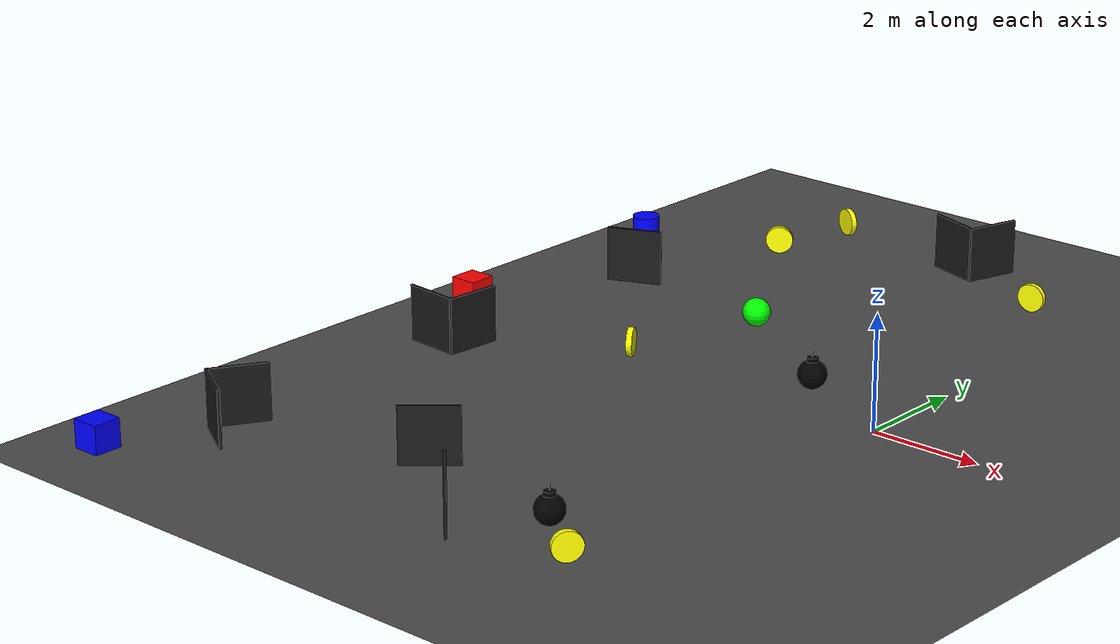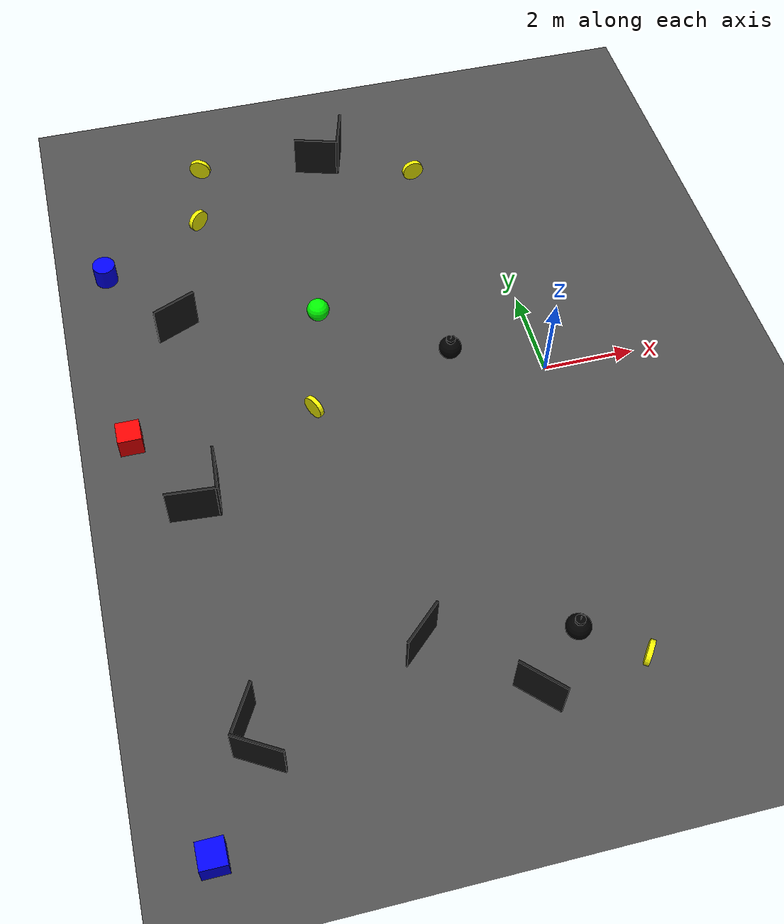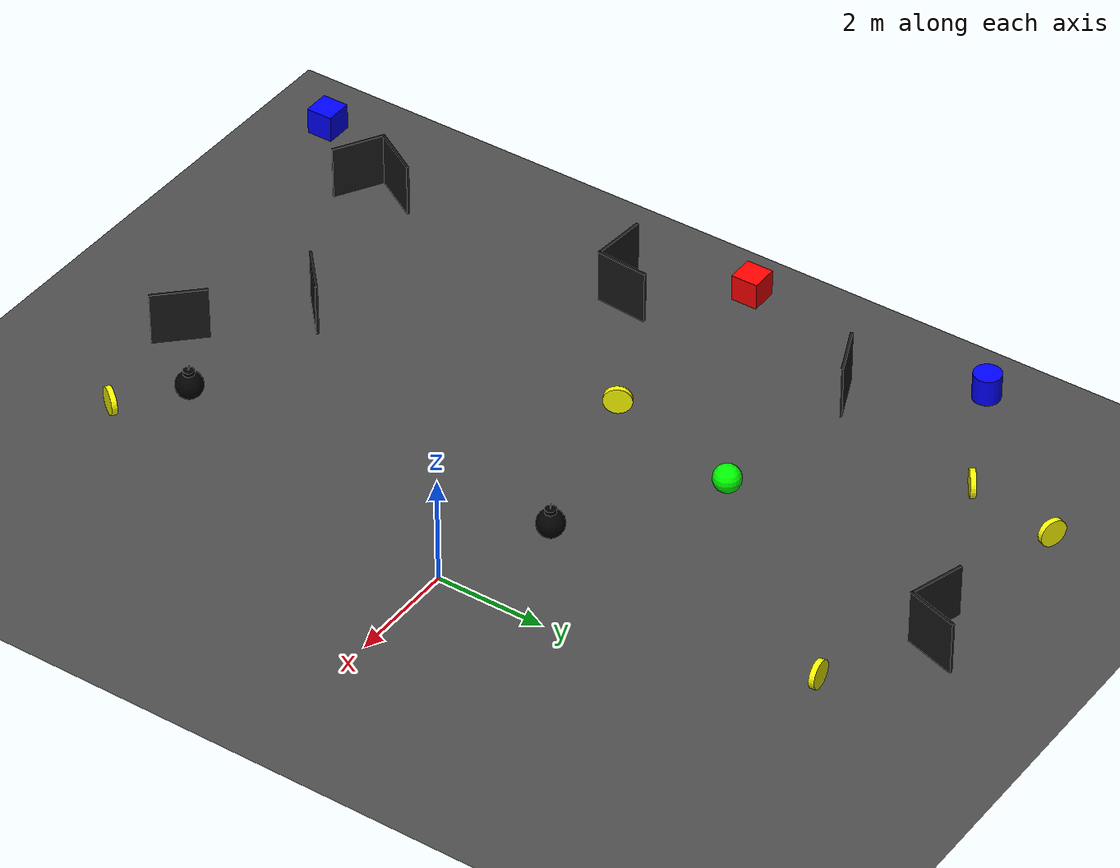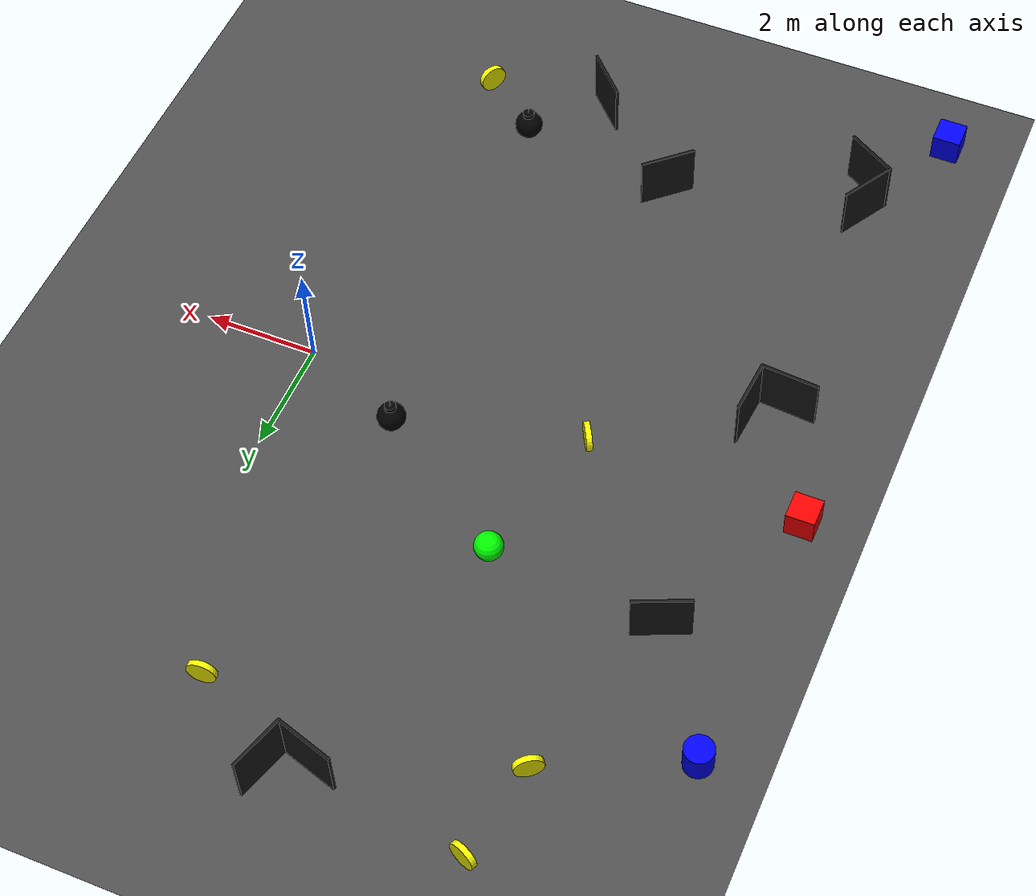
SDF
<sdf version="1.6">
 <world name="default">
  <model name="labrob_ground">
   <static>1</static>
   <link name="link">
    <collision name="collision">
     <geometry><plane><normal>0 0 1</normal><size>20 20</size></plane></geometry>
     <surface><contact><collide_bitmask>2</collide_bitmask></contact></surface>
    </collision>
    <visual name="visual">
     <cast_shadows>0</cast_shadows>
     <geometry><plane><normal>0 0 1</normal><size>20 20</size></plane></geometry>
     <material>
      <script>
       <uri>model://labrob_ground/materials/scripts/</uri>
       <uri>model://labrob_ground/materials/textures/</uri>
       <name>Labrob/AsphaltGround</name>
      </script>
     </material>
    </visual>
   </link>
  </model>
  <model name="coin_3">
   <link name="chassis">
    <pose>0 0 0.26 0 -0 0</pose>
    <collision name="box_collision">
     <geometry><sphere><radius>0.25</radius></sphere></geometry>
     <surface>
      <contact><collide_bitmask>1</collide_bitmask><ode><min_depth>10</min_depth><kp>1</kp></ode></contact>
     </surface>
    </collision>
    <visual name="visual">
     <pose>0 0 0 0 1.57 0</pose>
     <geometry><cylinder><radius>0.25</radius><length>0.1</length></cylinder></geometry>
     <material>
      <ambient>1 1 0 1</ambient>
      <diffuse>1 1 0 1</diffuse>
      <specular>0.1 0.1 0.1 1</specular>
      <emissive>0 0 0 0</emissive>
     </material>
    </visual>
    <sensor name="contact_sensor_1" type="contact">
     <plugin name="my_contact_plugin" filename="libgazebo_ros_bumper.so">
      <bumperTopicName>coin_bumper</bumperTopicName>
      <frameName>world</frameName>
     </plugin>
     <contact><collision>box_collision</collision><topic>__default_topic__</topic></contact>
    </sensor>
    <inertial>
     <inertia><ixx>1</ixx><ixy>0</ixy><ixz>0</ixz><iyy>1</iyy><iyz>0</iyz><izz>1</izz></inertia>
     <mass>1</mass>
    </inertial>
   </link>
   <joint name="coin_hinge" type="revolute">
    <pose>0 0 0.26 0 -0 0</pose>
    <child>chassis</child>
    <parent>world</parent>
    <axis>
     <xyz>0 0 1</xyz>
     <use_parent_model_frame>1</use_parent_model_frame>
     <limit><lower>-1e+16</lower><upper>1e+16</upper></limit>
     <dynamics><spring_reference>0</spring_reference><spring_stiffness>0</spring_stiffness></dynamics>
    </axis>
   </joint>
   <pose>-0.341977 -6.89468 0 0 0 -0.601681</pose>
  </model>
  <model name="coin_4">
   <link name="chassis">
    <pose>0 0 0.26 0 -0 0</pose>
    <collision name="box_collision">
     <geometry><sphere><radius>0.25</radius></sphere></geometry>
     <surface>
      <contact><collide_bitmask>1</collide_bitmask><ode><min_depth>10</min_depth><kp>1</kp></ode></contact>
     </surface>
    </collision>
    <visual name="visual">
     <pose>0 0 0 0 1.57 0</pose>
     <geometry><cylinder><radius>0.25</radius><length>0.1</length></cylinder></geometry>
     <material>
      <ambient>1 1 0 1</ambient>
      <diffuse>1 1 0 1</diffuse>
      <specular>0.1 0.1 0.1 1</specular>
      <emissive>0 0 0 0</emissive>
     </material>
    </visual>
    <sensor name="contact_sensor_1" type="contact">
     <plugin name="my_contact_plugin" filename="libgazebo_ros_bumper.so">
      <bumperTopicName>coin_bumper</bumperTopicName>
      <frameName>world</frameName>
     </plugin>
     <contact><collision>box_collision</collision><topic>__default_topic__</topic></contact>
    </sensor>
    <inertial>
     <inertia><ixx>1</ixx><ixy>0</ixy><ixz>0</ixz><iyy>1</iyy><iyz>0</iyz><izz>1</izz></inertia>
     <mass>1</mass>
    </inertial>
   </link>
   <joint name="coin_hinge" type="revolute">
    <pose>0 0 0.26 0 -0 0</pose>
    <child>chassis</child>
    <parent>world</parent>
    <axis>
     <xyz>0 0 1</xyz>
     <use_parent_model_frame>1</use_parent_model_frame>
     <limit><lower>-1e+16</lower><upper>1e+16</upper></limit>
     <dynamics><spring_reference>0</spring_reference><spring_stiffness>0</spring_stiffness></dynamics>
    </axis>
   </joint>
   <pose>-5.09801 -0.010363 0 0 0 -2.60667</pose>
  </model>
  <model name="coin_5">
   <link name="chassis">
    <pose>0 0 0.26 0 -0 0</pose>
    <collision name="box_collision">
     <geometry><sphere><radius>0.25</radius></sphere></geometry>
     <surface>
      <contact><collide_bitmask>1</collide_bitmask><ode><min_depth>10</min_depth><kp>1</kp></ode></contact>
     </surface>
    </collision>
    <visual name="visual">
     <pose>0 0 0 0 1.57 0</pose>
     <geometry><cylinder><radius>0.25</radius><length>0.1</length></cylinder></geometry>
     <material>
      <ambient>1 1 0 1</ambient>
      <diffuse>1 1 0 1</diffuse>
      <specular>0.1 0.1 0.1 1</specular>
      <emissive>0 0 0 0</emissive>
     </material>
    </visual>
    <sensor name="contact_sensor_1" type="contact">
     <plugin name="my_contact_plugin" filename="libgazebo_ros_bumper.so">
      <bumperTopicName>coin_bumper</bumperTopicName>
      <frameName>world</frameName>
     </plugin>
     <contact><collision>box_collision</collision><topic>__default_topic__</topic></contact>
    </sensor>
    <inertial>
     <inertia><ixx>1</ixx><ixy>0</ixy><ixz>0</ixz><iyy>1</iyy><iyz>0</iyz><izz>1</izz></inertia>
     <mass>1</mass>
    </inertial>
   </link>
   <joint name="coin_hinge" type="revolute">
    <pose>0 0 0.26 0 -0 0</pose>
    <child>chassis</child>
    <parent>world</parent>
    <axis>
     <xyz>0 0 1</xyz>
     <use_parent_model_frame>1</use_parent_model_frame>
     <limit><lower>-1e+16</lower><upper>1e+16</upper></limit>
     <dynamics><spring_reference>0</spring_reference><spring_stiffness>0</spring_stiffness></dynamics>
    </axis>
   </joint>
   <pose>-1.2612 6.3627 0 0 -0 1.66651</pose>
  </model>
  <model name="coin_6">
   <link name="chassis">
    <pose>0 0 0.26 0 -0 0</pose>
    <collision name="box_collision">
     <geometry><sphere><radius>0.25</radius></sphere></geometry>
     <surface>
      <contact><collide_bitmask>1</collide_bitmask><ode><min_depth>10</min_depth><kp>1</kp></ode></contact>
     </surface>
    </collision>
    <visual name="visual">
     <pose>0 0 0 0 1.57 0</pose>
     <geometry><cylinder><radius>0.25</radius><length>0.1</length></cylinder></geometry>
     <material>
      <ambient>1 1 0 1</ambient>
      <diffuse>1 1 0 1</diffuse>
      <specular>0.1 0.1 0.1 1</specular>
      <emissive>0 0 0 0</emissive>
     </material>
    </visual>
    <sensor name="contact_sensor_1" type="contact">
     <plugin name="my_contact_plugin" filename="libgazebo_ros_bumper.so">
      <bumperTopicName>coin_bumper</bumperTopicName>
      <frameName>world</frameName>
     </plugin>
     <contact><collision>box_collision</collision><topic>__default_topic__</topic></contact>
    </sensor>
    <inertial>
     <inertia><ixx>1</ixx><ixy>0</ixy><ixz>0</ixz><iyy>1</iyy><iyz>0</iyz><izz>1</izz></inertia>
     <mass>1</mass>
    </inertial>
   </link>
   <joint name="coin_hinge" type="revolute">
    <pose>0 0 0.26 0 -0 0</pose>
    <child>chassis</child>
    <parent>world</parent>
    <axis>
     <xyz>0 0 1</xyz>
     <use_parent_model_frame>1</use_parent_model_frame>
     <limit><lower>-1e+16</lower><upper>1e+16</upper></limit>
     <dynamics><spring_reference>0</spring_reference><spring_stiffness>0</spring_stiffness></dynamics>
    </axis>
   </joint>
   <pose>-6.57486 5.92197 0 0 -0 2.19378</pose>
  </model>
  <model name="coin_7">
   <link name="chassis">
    <pose>0 0 0.26 0 -0 0</pose>
    <collision name="box_collision">
     <geometry><sphere><radius>0.25</radius></sphere></geometry>
     <surface>
      <contact><collide_bitmask>1</collide_bitmask><ode><min_depth>10</min_depth><kp>1</kp></ode></contact>
     </surface>
    </collision>
    <visual name="visual">
     <pose>0 0 0 0 1.57 0</pose>
     <geometry><cylinder><radius>0.25</radius><length>0.1</length></cylinder></geometry>
     <material>
      <ambient>1 1 0 1</ambient>
      <diffuse>1 1 0 1</diffuse>
      <specular>0.1 0.1 0.1 1</specular>
      <emissive>0 0 0 0</emissive>
     </material>
    </visual>
    <sensor name="contact_sensor_1" type="contact">
     <plugin name="my_contact_plugin" filename="libgazebo_ros_bumper.so">
      <bumperTopicName>coin_bumper</bumperTopicName>
      <frameName>world</frameName>
     </plugin>
     <contact><collision>box_collision</collision><topic>__default_topic__</topic></contact>
    </sensor>
    <inertial>
     <inertia><ixx>1</ixx><ixy>0</ixy><ixz>0</ixz><iyy>1</iyy><iyz>0</iyz><izz>1</izz></inertia>
     <mass>1</mass>
    </inertial>
   </link>
   <joint name="coin_hinge" type="revolute">
    <pose>0 0 0.26 0 -0 0</pose>
    <child>chassis</child>
    <parent>world</parent>
    <axis>
     <xyz>0 0 1</xyz>
     <use_parent_model_frame>1</use_parent_model_frame>
     <limit><lower>-1e+16</lower><upper>1e+16</upper></limit>
     <dynamics><spring_reference>0</spring_reference><spring_stiffness>0</spring_stiffness></dynamics>
    </axis>
   </joint>
   <pose>-6.25622 7.61452 0 0 0 -1.97458</pose>
  </model>
  <model name="bomb_1">
   <link name="chassis">
    <pose>0 0 0.25 0 -0 0</pose>
    <collision name="box_collision">
     <geometry><sphere><radius>0.25</radius></sphere></geometry>
     <surface>
      <contact><collide_bitmask>1</collide_bitmask><ode><min_depth>10</min_depth><kp>1</kp></ode></contact>
     </surface>
    </collision>
    <visual name="visual">
     <pose>0 0 0.2 0 -0 0</pose>
     <geometry><cylinder><radius>0.1</radius><length>0.2</length></cylinder></geometry>
     <material>
      <ambient>0 0 0 1</ambient>
      <diffuse>0 0 0 1</diffuse>
      <specular>0.1 0.1 0.1 1</specular>
      <emissive>0 0 0 0</emissive>
     </material>
    </visual>
    <visual name="visual2">
     <geometry><sphere><radius>0.25</radius></sphere></geometry>
     <material>
      <ambient>0 0 0 1</ambient>
      <diffuse>0 0 0 1</diffuse>
      <specular>0.1 0.1 0.1 1</specular>
      <emissive>0 0 0 0</emissive>
     </material>
    </visual>
    <visual name="visual3">
     <pose>0 0 0.3 0 -0 0</pose>
     <geometry><cylinder><radius>0.01</radius><length>0.2</length></cylinder></geometry>
     <material>
      <ambient>1 1 1 1</ambient>
      <diffuse>1 1 1 1</diffuse>
      <specular>0.1 0.1 0.1 1</specular>
      <emissive>0 0 0 0</emissive>
     </material>
    </visual>
    <sensor name="contact_sensor_1" type="contact">
     <plugin name="my_contact_plugin" filename="libgazebo_ros_bumper.so">
      <bumperTopicName>bomb_bumper</bumperTopicName>
      <frameName>world</frameName>
     </plugin>
     <contact><collision>box_collision</collision><topic>__default_topic__</topic></contact>
    </sensor>
    <inertial>
     <inertia><ixx>1</ixx><ixy>0</ixy><ixz>0</ixz><iyy>1</iyy><iyz>0</iyz><izz>1</izz></inertia>
     <mass>1</mass>
    </inertial>
   </link>
   <joint name="bomb_hinge" type="revolute">
    <pose>0 0 0.2 0 -0 0</pose>
    <child>chassis</child>
    <parent>world</parent>
    <axis>
     <xyz>0 0 0</xyz>
     <use_parent_model_frame>1</use_parent_model_frame>
     <limit><lower>-1e+16</lower><upper>1e+16</upper></limit>
     <dynamics><spring_reference>0</spring_reference><spring_stiffness>0</spring_stiffness></dynamics>
    </axis>
   </joint>
   <pose>-1.42414 -6.08574 0 0 -0 0</pose>
  </model>
  <model name="wall_1_1">
   <static>1</static>
   <link name="chassis">
    <pose>0 0 0.5 0 -0 0</pose>
    <collision name="barrier_collision"><geometry><box><size>1 0.05 1</size></box></geometry></collision>
    <visual name="visual">
     <geometry><box><size>1 0.05 1</size></box></geometry>
     <material>
      <ambient>0.1 0.1 0.1 1</ambient>
      <diffuse>0.1 0.1 0.1 1</diffuse>
      <specular>0.1 0.1 0.1 1</specular>
      <emissive>0 0 0 0</emissive>
     </material>
    </visual>
    <sensor name="contact_sensor_1" type="contact">
     <plugin name="my_contact_plugin" filename="libgazebo_ros_bumper.so">
      <bumperTopicName>obstacle_bumper</bumperTopicName>
      <frameName>world</frameName>
     </plugin>
     <contact><collision>barrier_collision</collision><topic>__default_topic__</topic></contact>
    </sensor>
   </link>
   <pose>-4.32259 -5.6584 0 0 0 -2.40649</pose>
  </model>
  <model name="wall_1_2">
   <static>1</static>
   <link name="chassis">
    <pose>0 0 0.5 0 -0 0</pose>
    <collision name="barrier_collision"><geometry><box><size>1 0.05 1</size></box></geometry></collision>
    <visual name="visual">
     <geometry><box><size>1 0.05 1</size></box></geometry>
     <material>
      <ambient>0.1 0.1 0.1 1</ambient>
      <diffuse>0.1 0.1 0.1 1</diffuse>
      <specular>0.1 0.1 0.1 1</specular>
      <emissive>0 0 0 0</emissive>
     </material>
    </visual>
    <sensor name="contact_sensor_1" type="contact">
     <plugin name="my_contact_plugin" filename="libgazebo_ros_bumper.so">
      <bumperTopicName>obstacle_bumper</bumperTopicName>
      <frameName>world</frameName>
     </plugin>
     <contact><collision>barrier_collision</collision><topic>__default_topic__</topic></contact>
    </sensor>
   </link>
   <pose>-2.54272 -7.13994 0 0 0 -0.796447</pose>
  </model>
  <model name="wall_2_0">
   <static>1</static>
   <link name="chassis">
    <pose>0 0 0.5 0 -0 0</pose>
    <collision name="barrier_collision"><geometry><box><size>1 0.05 1</size></box></geometry></collision>
    <visual name="visual">
     <geometry><box><size>1 0.05 1</size></box></geometry>
     <material>
      <ambient>0.1 0.1 0.1 1</ambient>
      <diffuse>0.1 0.1 0.1 1</diffuse>
      <specular>0.1 0.1 0.1 1</specular>
      <emissive>0 0 0 0</emissive>
     </material>
    </visual>
    <collision name="barrier_collision2">
     <pose>-0.475 0.525 0 0 -0 1.57</pose>
     <geometry><box><size>1 0.05 1</size></box></geometry>
    </collision>
    <visual name="visual2">
     <pose>-0.475 0.525 0 0 -0 1.57</pose>
     <geometry><box><size>1 0.05 1</size></box></geometry>
     <material>
      <ambient>0.1 0.1 0.1 1</ambient>
      <diffuse>0.1 0.1 0.1 1</diffuse>
      <specular>0.1 0.1 0.1 1</specular>
      <emissive>0 0 0 0</emissive>
     </material>
    </visual>
    <sensor name="contact_sensor_1" type="contact">
     <plugin name="my_contact_plugin" filename="libgazebo_ros_bumper.so">
      <bumperTopicName>obstacle_bumper</bumperTopicName>
      <frameName>world</frameName>
     </plugin>
     <contact><collision>barrier_collision</collision><topic>__default_topic__</topic></contact>
    </sensor>
    <sensor name="contact_sensor_2" type="contact">
     <plugin name="my_contact_plugin" filename="libgazebo_ros_bumper.so">
      <bumperTopicName>obstacle_bumper</bumperTopicName>
      <frameName>world</frameName>
     </plugin>
     <contact><collision>barrier_collision2</collision><topic>__default_topic__</topic></contact>
    </sensor>
   </link>
   <pose>-7.64072 -7.1503 0 0 0 -0.530965</pose>
  </model>
  <model name="wall_1_3">
   <static>1</static>
   <link name="chassis">
    <pose>0 0 0.5 0 -0 0</pose>
    <collision name="barrier_collision"><geometry><box><size>1 0.05 1</size></box></geometry></collision>
    <visual name="visual">
     <geometry><box><size>1 0.05 1</size></box></geometry>
     <material>
      <ambient>0.1 0.1 0.1 1</ambient>
      <diffuse>0.1 0.1 0.1 1</diffuse>
      <specular>0.1 0.1 0.1 1</specular>
      <emissive>0 0 0 0</emissive>
     </material>
    </visual>
    <sensor name="contact_sensor_1" type="contact">
     <plugin name="my_contact_plugin" filename="libgazebo_ros_bumper.so">
      <bumperTopicName>obstacle_bumper</bumperTopicName>
      <frameName>world</frameName>
     </plugin>
     <contact><collision>barrier_collision</collision><topic>__default_topic__</topic></contact>
    </sensor>
   </link>
   <pose>-7.53425 2.88935 0 0 -0 0.407105</pose>
  </model>
  <model name="wall_2_1">
   <static>1</static>
   <link name="chassis">
    <pose>0 0 0.5 0 -0 0</pose>
    <collision name="barrier_collision"><geometry><box><size>1 0.05 1</size></box></geometry></collision>
    <visual name="visual">
     <geometry><box><size>1 0.05 1</size></box></geometry>
     <material>
      <ambient>0.1 0.1 0.1 1</ambient>
      <diffuse>0.1 0.1 0.1 1</diffuse>
      <specular>0.1 0.1 0.1 1</specular>
      <emissive>0 0 0 0</emissive>
     </material>
    </visual>
    <collision name="barrier_collision2">
     <pose>-0.475 0.525 0 0 -0 1.57</pose>
     <geometry><box><size>1 0.05 1</size></box></geometry>
    </collision>
    <visual name="visual2">
     <pose>-0.475 0.525 0 0 -0 1.57</pose>
     <geometry><box><size>1 0.05 1</size></box></geometry>
     <material>
      <ambient>0.1 0.1 0.1 1</ambient>
      <diffuse>0.1 0.1 0.1 1</diffuse>
      <specular>0.1 0.1 0.1 1</specular>
      <emissive>0 0 0 0</emissive>
     </material>
    </visual>
    <sensor name="contact_sensor_1" type="contact">
     <plugin name="my_contact_plugin" filename="libgazebo_ros_bumper.so">
      <bumperTopicName>obstacle_bumper</bumperTopicName>
      <frameName>world</frameName>
     </plugin>
     <contact><collision>barrier_collision</collision><topic>__default_topic__</topic></contact>
    </sensor>
    <sensor name="contact_sensor_2" type="contact">
     <plugin name="my_contact_plugin" filename="libgazebo_ros_bumper.so">
      <bumperTopicName>obstacle_bumper</bumperTopicName>
      <frameName>world</frameName>
     </plugin>
     <contact><collision>barrier_collision2</collision><topic>__default_topic__</topic></contact>
    </sensor>
   </link>
   <pose>-7.39333 -1.49463 0 0 -0 1.49429</pose>
  </model>
  <model name="wall_2_2">
   <static>1</static>
   <link name="chassis">
    <pose>0 0 0.5 0 -0 0</pose>
    <collision name="barrier_collision"><geometry><box><size>1 0.05 1</size></box></geometry></collision>
    <visual name="visual">
     <geometry><box><size>1 0.05 1</size></box></geometry>
     <material>
      <ambient>0.1 0.1 0.1 1</ambient>
      <diffuse>0.1 0.1 0.1 1</diffuse>
      <specular>0.1 0.1 0.1 1</specular>
      <emissive>0 0 0 0</emissive>
     </material>
    </visual>
    <collision name="barrier_collision2">
     <pose>-0.475 0.525 0 0 -0 1.57</pose>
     <geometry><box><size>1 0.05 1</size></box></geometry>
    </collision>
    <visual name="visual2">
     <pose>-0.475 0.525 0 0 -0 1.57</pose>
     <geometry><box><size>1 0.05 1</size></box></geometry>
     <material>
      <ambient>0.1 0.1 0.1 1</ambient>
      <diffuse>0.1 0.1 0.1 1</diffuse>
      <specular>0.1 0.1 0.1 1</specular>
      <emissive>0 0 0 0</emissive>
     </material>
    </visual>
    <sensor name="contact_sensor_1" type="contact">
     <plugin name="my_contact_plugin" filename="libgazebo_ros_bumper.so">
      <bumperTopicName>obstacle_bumper</bumperTopicName>
      <frameName>world</frameName>
     </plugin>
     <contact><collision>barrier_collision</collision><topic>__default_topic__</topic></contact>
    </sensor>
    <sensor name="contact_sensor_2" type="contact">
     <plugin name="my_contact_plugin" filename="libgazebo_ros_bumper.so">
      <bumperTopicName>obstacle_bumper</bumperTopicName>
      <frameName>world</frameName>
     </plugin>
     <contact><collision>barrier_collision2</collision><topic>__default_topic__</topic></contact>
    </sensor>
   </link>
   <pose>-2.85344 7.42636 0 0 -0 1.27436</pose>
  </model>
  <model name="bomb">
   <link name="chassis">
    <pose>0 0 0.25 0 -0 0</pose>
    <collision name="box_collision">
     <geometry><sphere><radius>0.25</radius></sphere></geometry>
     <surface>
      <contact><collide_bitmask>1</collide_bitmask><ode><min_depth>10</min_depth><kp>1</kp></ode></contact>
     </surface>
    </collision>
    <visual name="visual">
     <pose>0 0 0.2 0 -0 0</pose>
     <geometry><cylinder><radius>0.1</radius><length>0.2</length></cylinder></geometry>
     <material>
      <ambient>0 0 0 1</ambient>
      <diffuse>0 0 0 1</diffuse>
      <specular>0.1 0.1 0.1 1</specular>
      <emissive>0 0 0 0</emissive>
     </material>
    </visual>
    <visual name="visual2">
     <geometry><sphere><radius>0.25</radius></sphere></geometry>
     <material>
      <ambient>0 0 0 1</ambient>
      <diffuse>0 0 0 1</diffuse>
      <specular>0.1 0.1 0.1 1</specular>
      <emissive>0 0 0 0</emissive>
     </material>
    </visual>
    <visual name="visual3">
     <pose>0 0 0.3 0 -0 0</pose>
     <geometry><cylinder><radius>0.01</radius><length>0.2</length></cylinder></geometry>
     <material>
      <ambient>1 1 1 1</ambient>
      <diffuse>1 1 1 1</diffuse>
      <specular>0.1 0.1 0.1 1</specular>
      <emissive>0 0 0 0</emissive>
     </material>
    </visual>
    <sensor name="contact_sensor_1" type="contact">
     <plugin name="my_contact_plugin" filename="libgazebo_ros_bumper.so">
      <bumperTopicName>bomb_bumper</bumperTopicName>
      <frameName>world</frameName>
     </plugin>
     <contact><collision>box_collision</collision><topic>__default_topic__</topic></contact>
    </sensor>
    <inertial>
     <inertia><ixx>1</ixx><ixy>0</ixy><ixz>0</ixz><iyy>1</iyy><iyz>0</iyz><izz>1</izz></inertia>
     <mass>1</mass>
    </inertial>
   </link>
   <joint name="bomb_hinge" type="revolute">
    <pose>0 0 0.2 0 -0 0</pose>
    <child>chassis</child>
    <parent>world</parent>
    <axis>
     <xyz>0 0 0</xyz>
     <use_parent_model_frame>1</use_parent_model_frame>
     <limit><lower>-1e+16</lower><upper>1e+16</upper></limit>
     <dynamics><spring_reference>0</spring_reference><spring_stiffness>0</spring_stiffness></dynamics>
    </axis>
   </joint>
   <pose>-1.89771 0.855552 0 0 -0 0</pose>
  </model>
  <model name="sphere_green">
   <static>1</static>
   <link name="chassis">
    <pose>0 0 0.25 0 -0 0</pose>
    <collision name="collision"><geometry><sphere><radius>0.25</radius></sphere></geometry></collision>
    <visual name="visual">
     <geometry><sphere><radius>0.25</radius></sphere></geometry>
     <material>
      <ambient>0 1 0 1</ambient>
      <diffuse>0 1 0 1</diffuse>
      <specular>0.1 0.1 0.1 1</specular>
      <emissive>0 0 0 0</emissive>
     </material>
    </visual>
   </link>
   <pose>-4.44347 2.57751 0 0 -0 0</pose>
  </model>
  <model name="cube_blue">
   <static>1</static>
   <link name="chassis">
    <pose>0 0 0.25 0 -0 0</pose>
    <collision name="collision"><geometry><box><size>0.5 0.5 0.5</size></box></geometry></collision>
    <visual name="visual">
     <geometry><box><size>0.5 0.5 0.5</size></box></geometry>
     <material>
      <ambient>0 0 1 1</ambient>
      <diffuse>0 0 1 1</diffuse>
      <specular>0.1 0.1 0.1 1</specular>
      <emissive>0 0 0 0</emissive>
     </material>
    </visual>
   </link>
   <pose>-8.71086 -8.62419 0 0 -0 0</pose>
  </model>
  <model name="cylinder_blue">
   <static>1</static>
   <link name="chassis">
    <pose>0 0 0.25 0 -0 0</pose>
    <collision name="collision">
     <geometry><cylinder><radius>0.25</radius><length>0.5</length></cylinder></geometry>
    </collision>
    <visual name="visual">
     <geometry><cylinder><radius>0.25</radius><length>0.5</length></cylinder></geometry>
     <material>
      <ambient>0 0 1 1</ambient>
      <diffuse>0 0 1 1</diffuse>
      <specular>0.1 0.1 0.1 1</specular>
      <emissive>0 0 0 0</emissive>
     </material>
    </visual>
   </link>
   <pose>-8.89156 4.79685 0 0 -0 0</pose>
  </model>
  <model name="cube_red">
   <static>1</static>
   <link name="chassis">
    <pose>0 0 0.25 0 -0 0</pose>
    <collision name="collision"><geometry><box><size>0.5 0.5 0.5</size></box></geometry></collision>
    <visual name="visual">
     <geometry><box><size>0.5 0.5 0.5</size></box></geometry>
     <material>
      <ambient>1 0 0 1</ambient>
      <diffuse>1 0 0 1</diffuse>
      <specular>0.1 0.1 0.1 1</specular>
      <emissive>0 0 0 0</emissive>
     </material>
    </visual>
   </link>
   <pose>-8.94371 0.119605 0 0 -0 0</pose>
  </model>
 </world>
</sdf>
